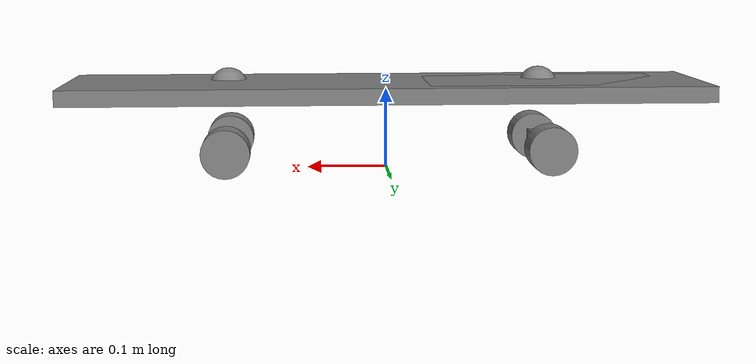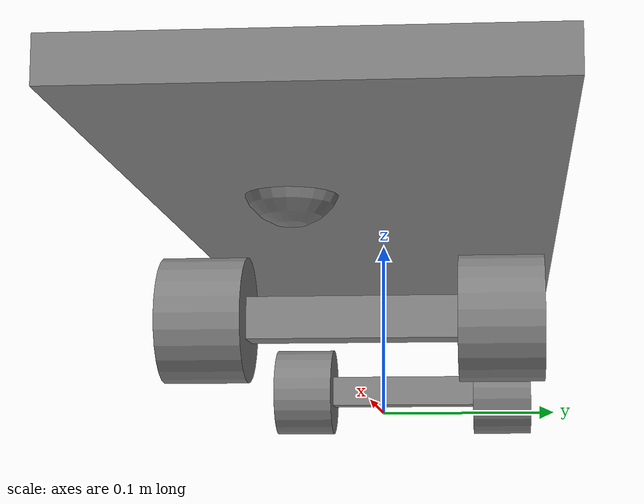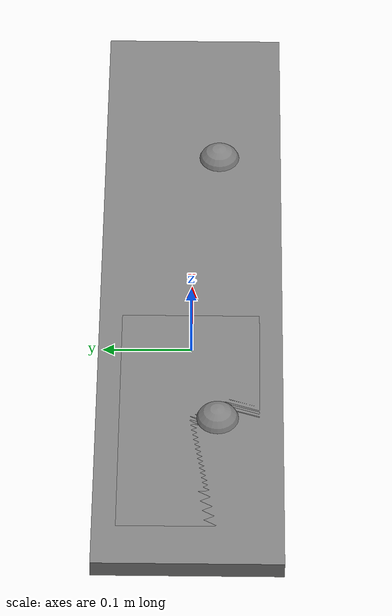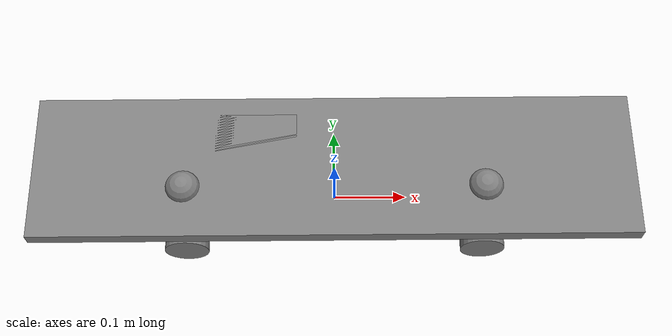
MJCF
<mujoco model="skateboard">
  <compiler angle="radian" autolimits="true"/>

  <default>
    <default class="wheel_geom">
      <geom size="0.03 0.02" quat="0.707388 0.706825 0 0"  type="cylinder"/>
    </default>
  </default>

  <worldbody>
    <body name="skateboard_deck" pos="0.0 0.0 0.10">
      <inertial pos="0 0 0" quat="1 0 0 0" mass="1.5" diaginertia="0.005 0.08 0.085"/>
      <freejoint name="floating_base_joint_skateboard"/>

      <body name="board_tilt_body" pos="0 0 0">
        <joint name="board_tilt_joint" pos="0 0 0" axis="-1 0 0" range="-0.2 0.2"/>
        <geom name="skateboard_deck_collision" size="0.4 0.1 0.01" type="box"/>
        <geom name="skateboard_marker_collision" size="0.15 0.075 0.005" pos="-0.2 0 0.005" type="box" />
        <site name="rear_marker" pos="-0.2 -0.03 0.0" size="0.025" />
        <site name="front_marker" pos="0.2 -0.03 0.0" size="0.025" />
      </body>
      <body name="front_truck" pos="0.2 0 0.02">
        <inertial pos="0 0 -0.09" quat="0.707388 0 0 0.706825" mass="0.5" diaginertia="0.00043 3.3e-05 0.00043"/>
        <joint name="front_truck_roll_joint" pos="0 0 0" axis="0 0 -1" range="-0.10 0.10" actuatorfrcrange="-20 20" />
        <geom name="front_truck_collision" size="0.05 0.01 0.01" pos="0 0 -0.09" quat="0.707388 0 0 0.706825" type="box"/>
        <body name="front_left_wheel" pos="0 0 -0.09">
          <inertial pos="0 0.07 0" mass="0.2" diaginertia="1e-05 1e-05 1e-05"/>
          <joint name="front_left_wheel_joint" pos="0 0 0" axis="0 1 0" actuatorfrcrange="-5 5" />
          <geom class="wheel_geom" name="front_left_wheel_collision"  pos="0 0.07 0"/>
        </body>
        <body name="front_right_wheel" pos="0 0 -0.09">
          <inertial pos="0 -0.07 0" mass="0.2" diaginertia="1e-05 1e-05 1e-05"/>
          <joint name="front_right_wheel_joint" pos="0 0 0" axis="0 1 0" actuatorfrcrange="-5 5"/>
          <geom class="wheel_geom" name="front_right_wheel_collision"  pos="0 -0.07 0"/>
        </body>
      </body>
      <body name="rear_truck" pos="-0.2 0 0.02">
        <inertial pos="0 0 -0.09" quat="0.707388 0 0 0.706825" mass="0.5" diaginertia="0.00043 3.3e-05 0.00043"/>
        <joint name="rear_truck_roll_joint" pos="0 0 0" axis="0 0 1" range="-0.10 0.10" actuatorfrcrange="-20 20"/>
        <geom name="rear_truck_collision" size="0.05 0.01 0.01" pos="0 0 -0.09" quat="0.707388 0 0 0.706825" type="box"/>
        <body name="rear_left_wheel" pos="0 0 -0.09">
          <inertial pos="0 0.07 0" mass="0.2" diaginertia="1e-05 1e-05 1e-05"/>
          <joint name="rear_left_wheel_joint" pos="0 0 0" axis="0 1 0" actuatorfrcrange="-5 5"/>
          <geom class="wheel_geom" name="rear_left_wheel_collision" pos="0 0.07 0" />
        </body>
        <body name="rear_right_wheel" pos="0 0 -0.09">
          <inertial pos="0 -0.07 0" mass="0.2" diaginertia="1e-05 1e-05 1e-05"/>
          <joint name="rear_right_wheel_joint" pos="0 0 0" axis="0 1 0" actuatorfrcrange="-5 5"/>
          <geom class="wheel_geom" name="rear_right_wheel_collision" pos="0 -0.07 0"/>
        </body>
      </body>
    </body>
  </worldbody>

  <equality>
    <joint joint1="board_tilt_joint"
          joint2="front_truck_roll_joint"
          polycoef="0 -0.577 0 0 0"/>
    <joint joint1="board_tilt_joint"
          joint2="rear_truck_roll_joint"
          polycoef="0 -0.577 0 0 0"/>
  </equality>

</mujoco>
